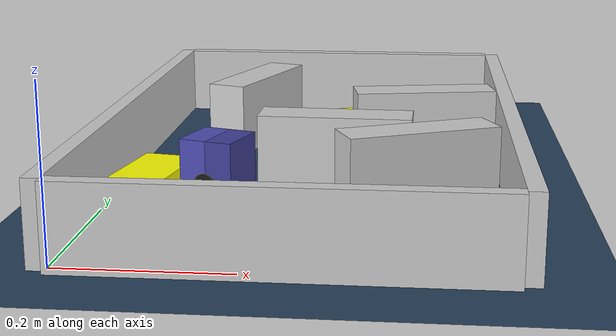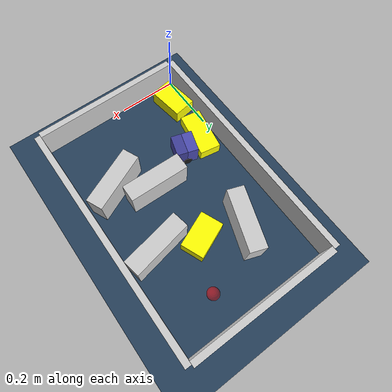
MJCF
<?xml version='1.0' encoding='utf-8'?>
<mujoco model="real_buildable">
  <compiler angle="degree" />
  <option timestep="0.002" integrator="implicitfast" iterations="100" cone="elliptic" />
  <default>
    <geom density="1" />
  </default>
  <asset>
    <texture builtin="gradient" height="3072" rgb1="0.3 0.5 0.7" rgb2="0 0 0" type="skybox" width="512" />
    <texture builtin="checker" height="300" mark="edge" markrgb="0.8 0.8 0.8" name="groundplane" rgb1="0.2 0.3 0.4" rgb2="0.1 0.2 0.3" type="2d" width="300" />
    <material name="groundplane" reflectance="0.2" texrepeat="5 5" texture="groundplane" texuniform="true" />
  </asset>
  <worldbody>
    <light dir="0 0 -1" directional="true" pos="0 0 1.5" />
    <geom name="floor" type="plane" condim="4" friction="0.5 0.005 0.001" material="groundplane" size="0 0 0.05" />
    <body name="walls">
      <geom name="wall_boundary_left" type="box" condim="4" friction="1.0 0.005 0.0001" rgba="0.8 0.8 0.8 1" pos="-0.010000 0.387500 0.050000" euler="0 0 0.000000" size="0.010000 0.397500 0.050000" />
      <geom name="wall_boundary_right" type="box" condim="4" friction="1.0 0.005 0.0001" rgba="0.8 0.8 0.8 1" pos="0.500000 0.387500 0.050000" euler="0 0 0.000000" size="0.010000 0.397500 0.050000" />
      <geom name="wall_boundary_bottom" type="box" condim="4" friction="1.0 0.005 0.0001" rgba="0.8 0.8 0.8 1" pos="0.245000 -0.010000 0.050000" euler="0 0 0.000000" size="0.245000 0.010000 0.050000" />
      <geom name="wall_boundary_top" type="box" condim="4" friction="1.0 0.005 0.0001" rgba="0.8 0.8 0.8 1" pos="0.245000 0.785000 0.050000" euler="0 0 0.000000" size="0.245000 0.010000 0.050000" />
      <geom name="wall_inner_1" type="box" condim="4" friction="1.0 0.005 0.0001" rgba="0.8 0.8 0.8 1" pos="0.277378 0.316752 0.050000" euler="0 0 178.535241" size="0.097500 0.027500 0.050000" />
      <geom name="wall_inner_2" type="box" condim="4" friction="1.0 0.005 0.0001" rgba="0.8 0.8 0.8 1" pos="0.382460 0.247215 0.050000" euler="0 0 203.865866" size="0.097500 0.027500 0.050000" />
      <geom name="wall_inner_3" type="box" condim="4" friction="1.0 0.005 0.0001" rgba="0.8 0.8 0.8 1" pos="0.389000 0.485000 0.050000" euler="0 0 10.600000" size="0.097500 0.027500 0.050000" />
      <geom name="wall_inner_4" type="box" condim="4" friction="1.0 0.005 0.0001" rgba="0.8 0.8 0.8 1" pos="0.139000 0.575000 0.050000" euler="0 0 70.500000" size="0.097500 0.027500 0.050000" />
    </body>
    <body name="car" pos="0.13289441258044446 0.26688686302545273 0.01" quat="0.14913402801550182 0 0 0.98881699099877507">
      <freejoint name="car_freejoint" />
      <inertial pos="0 0 0.0375" mass="0.35" diaginertia="0.000266 0.000266 0.000286" />
      <geom name="front_chassis_collision" type="box" pos="0.0175 0 0.0375" size="0.0175 0.035 0.0325" rgba="0.3 0.3 0.7 1" />
      <geom name="rear_chassis_collision" type="box" pos="-0.0175 0 0.0375" size="0.0175 0.035 0.0325" rgba="0.25 0.25 0.6 1" />
      <geom name="front_marker" type="box" pos="0.034 0 0.0505" size="0.002 0.015 0.01" rgba="1 0.2 0.2 1" contype="0" conaffinity="0" />
      <body name="rear_support_body" pos="-0.03 0 0.0025">
        <joint name="rear_caster_joint" type="ball" damping="0.0001" />
        <inertial pos="0 0 0" mass="0.025" diaginertia="0.000001 0.000001 0.000001" />
        <geom name="rear_support" type="sphere" pos="0 0 0" size="0.0025" friction="0 0 0" rgba="0.7 0.1 0.1 1" />
      </body>
      <body name="front_support_body" pos="0.03 0 0.0025">
        <joint name="front_caster_joint" type="ball" damping="0.0001" />
        <inertial pos="0 0 0" mass="0.025" diaginertia="0.000001 0.000001 0.000001" />
        <geom name="front_support" type="sphere" pos="0 0 0" size="0.0025" friction="0 0 0" rgba="0.1 0.7 0.1 1" />
      </body>
      <body name="left_wheel" pos="0 0.0375 0.015">
        <inertial pos="0 0 0" mass="0.05" diaginertia="0.000003 0.000006 0.000003" />
        <joint name="left_wheel_joint" type="hinge" axis="0 1 0" damping="0.01" armature="0.0001" />
        <geom name="left_wheel_collision" type="cylinder" size="0.015 0.0005" euler="90 0 0" rgba="0.1 0.1 0.1 1" />
      </body>
      <body name="right_wheel" pos="0 -0.0375 0.015">
        <inertial pos="0 0 0" mass="0.05" diaginertia="0.000003 0.000006 0.000003" />
        <joint name="right_wheel_joint" type="hinge" axis="0 1 0" damping="0.01" armature="0.0001" />
        <geom name="right_wheel_collision" type="cylinder" size="0.015 0.0005" euler="90 0 0" rgba="0.1 0.1 0.1 1" />
      </body>
    </body>
    <body name="obstacle_0_movable">
      <geom name="obstacle_0_movable" condim="4" pos="0.050067729044948509 0.24314358073345715 0.02" friction="1 0.005 0.0001" rgba="1 1 0 1" size="0.035000 0.075000 0.020000" type="box" mass="0.1" quat="0.084916041825993327 0 0 0.99638811004578243" />
      <joint type="free" />
    </body>
    <body name="obstacle_1_movable">
      <geom name="obstacle_1_movable" condim="4" pos="0.26000000000000006 0.52999999999999936 0.025000000000000001" friction="1 0.005 0.0001" rgba="1 1 0 1" size="0.037500 0.060000 0.025000" type="box" mass="0.1" quat="0.83195412213048248 0 0 -0.55484442744799933" />
      <joint type="free" />
    </body>
    <body name="obstacle_2_movable">
      <geom name="obstacle_2_movable" condim="4" pos="0.048217000000000065 0.084040000000000045 0.025000000000000001" friction="1 0.005 0.0001" rgba="1 1 0 1" size="0.037500 0.060000 0.025000" type="box" mass="0.1" quat="0.99728034327583981 0 0 0.073701539438623689" />
      <joint type="free" />
    </body>
    <site name="goal" type="sphere" pos="0.330000 0.680000 0.0" size="0.02" rgba="1 0 0 0.5" />
  </worldbody>
  <actuator>
    <velocity name="left_wheel_drive" joint="left_wheel_joint" ctrlrange="-25 25" kv="0.75" forcerange="-0.5 0.5" />
    <velocity name="right_wheel_drive" joint="right_wheel_joint" ctrlrange="-25 25" kv="0.75" forcerange="-0.5 0.5" />
  </actuator>
</mujoco>
